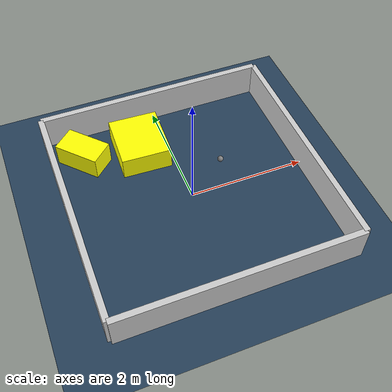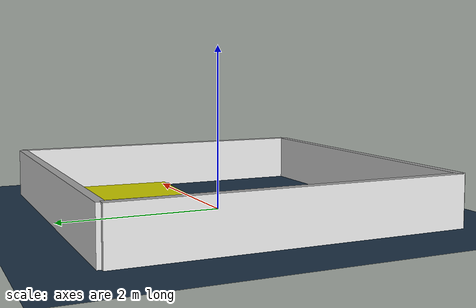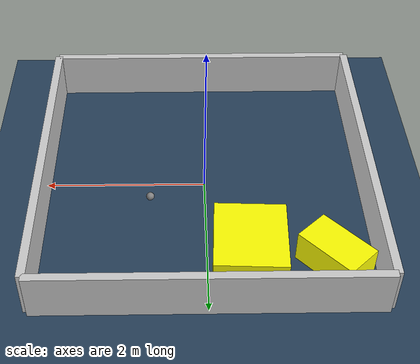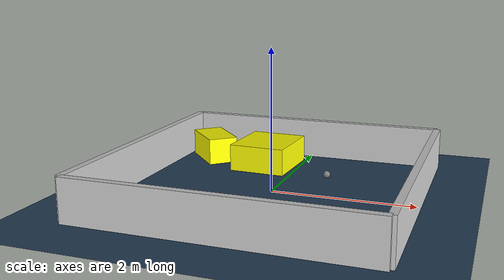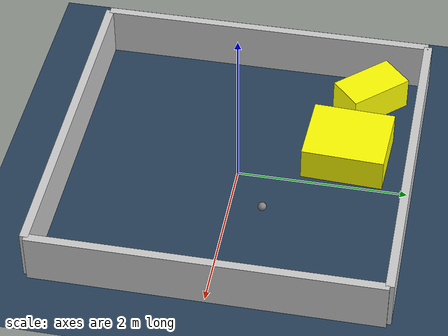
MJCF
<?xml version="1.0" ?>
<mujoco model="generated_environment">
  <option timestep="0.01" integrator="RK4" cone="elliptic"/>
  <default>
    <geom density="1"/>
  </default>
  <asset>
    <texture builtin="gradient" height="3072" rgb1="0.3 0.5 0.7" rgb2="0 0 0" type="skybox" width="512"/>
    <texture builtin="checker" height="300" mark="edge" markrgb="0.8 0.8 0.8" name="groundplane" rgb1="0.2 0.3 0.4" rgb2="0.1 0.2 0.3" type="2d" width="300"/>
    <material name="groundplane" reflectance="0.2" texrepeat="5 5" texture="groundplane" texuniform="true"/>
    <material name="robot" rgba="0.0 1.0 0.0 1"/>
  </asset>
  <worldbody>
    <light dir="0 0 -1" directional="true" pos="0 0 1.5"/>
    <geom condim="4" friction="1.0 0.005 0.001" material="groundplane" name="floor" size="0 0 0.05" type="plane"/>
    <body name="walls">
      <geom name="wall_1" condim="4" pos="-2.0 0.0 0.3" rgba="0.800000011920929 0.800000011920929 0.800000011920929 1.0" size="0.05 2.0 0.3" type="box"/>
      <geom name="wall_2" condim="4" pos="2.0 0.0 0.3" rgba="0.800000011920929 0.800000011920929 0.800000011920929 1.0" size="0.05 2.0 0.3" type="box"/>
      <geom name="wall_3" condim="4" pos="0.0 -2.0 0.3" rgba="0.800000011920929 0.800000011920929 0.800000011920929 1.0" size="2.0 0.05 0.3" type="box"/>
      <geom name="wall_4" condim="4" pos="0.0 2.0 0.3" rgba="0.800000011920929 0.800000011920929 0.800000011920929 1.0" size="2.0 0.05 0.3" type="box"/>
    </body>
    <body name="robot">
      <joint name="joint_x" type="slide" pos="0 0 0" axis="1 0 0"/>
      <joint name="joint_y" type="slide" pos="0 0 0" axis="0 1 0"/>
      <geom name="robot" type="sphere" pos="0.6778373810725382 0.4044553584147481 0.2" size="0.05" mass="5." friction="1.0 0.005 0.0001" condim="4"/>
      <site name="sensor_ball"/>
    </body>
    <body name="obstacle_1_movable">
      <geom name="obstacle_1_movable" condim="4" pos="-1.4640391004331104 1.3777476407711748 0.2" euler="0 0 132.9400144319439" friction="1.0 0.005 0.001" rgba="1 1 0 1" size="0.3930016568784686 0.22746105417374302 0.2" type="box" mass="0.1"/>
      <joint type="free"/>
    </body>
    <body name="obstacle_2_movable">
      <geom name="obstacle_2_movable" condim="4" pos="-0.49435431116144657 1.2316076321440628 0.2" euler="0 0 87.46588315056405" friction="1.0 0.005 0.001" rgba="1 1 0 1" size="0.4842781557581712 0.42630836550140794 0.2" type="box" mass="0.1"/>
      <joint type="free"/>
    </body>
  </worldbody>
  <actuator>
    <motor name="actuator_x" joint="joint_x" gear="1" ctrlrange="-1 1"/>
    <motor name="actuator_y" joint="joint_y" gear="1" ctrlrange="-1 1"/>
  </actuator>
</mujoco>
